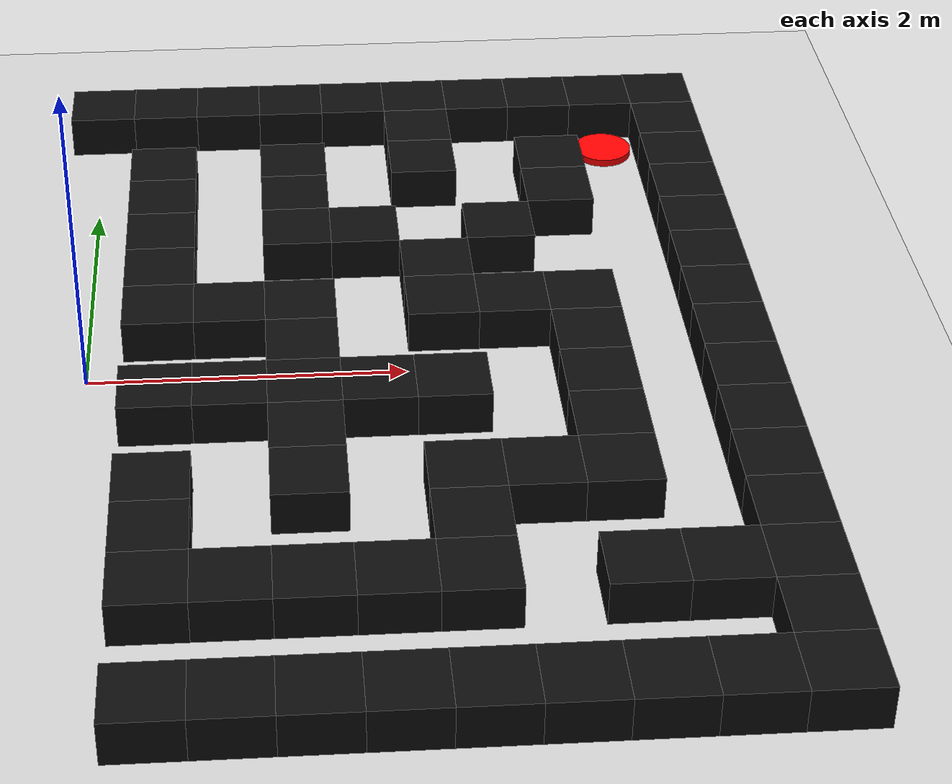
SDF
<sdf version="1.9">
 <world name="generated_block_maze">
  <model name="ground_plane">
   <static>true</static>
   <link name="link">
    <collision name="collision">
     <geometry><plane><normal>0 0 1</normal><size>30 30</size></plane></geometry>
    </collision>
    <visual name="visual">
     <geometry><plane><normal>0 0 1</normal><size>30 30</size></plane></geometry>
     <material><ambient>0.82 0.82 0.82 1</ambient><diffuse>0.82 0.82 0.82 1</diffuse></material>
    </visual>
   </link>
  </model>
  <model name="wall_10">
   <static>true</static>
   <pose>0.450 -3.150 0.140 0 0 0</pose>
   <link name="link">
    <collision name="collision"><geometry><box><size>0.450 0.450 0.280</size></box></geometry></collision>
    <visual name="visual">
     <geometry><box><size>0.450 0.450 0.280</size></box></geometry>
     <material><ambient>0.05 0.05 0.05 1</ambient><diffuse>0.05 0.05 0.05 1</diffuse></material>
    </visual>
   </link>
  </model>
  <model name="wall_11">
   <static>true</static>
   <pose>0.900 -3.150 0.140 0 0 0</pose>
   <link name="link">
    <collision name="collision"><geometry><box><size>0.450 0.450 0.280</size></box></geometry></collision>
    <visual name="visual">
     <geometry><box><size>0.450 0.450 0.280</size></box></geometry>
     <material><ambient>0.05 0.05 0.05 1</ambient><diffuse>0.05 0.05 0.05 1</diffuse></material>
    </visual>
   </link>
  </model>
  <model name="wall_12">
   <static>true</static>
   <pose>1.350 -3.150 0.140 0 0 0</pose>
   <link name="link">
    <collision name="collision"><geometry><box><size>0.450 0.450 0.280</size></box></geometry></collision>
    <visual name="visual">
     <geometry><box><size>0.450 0.450 0.280</size></box></geometry>
     <material><ambient>0.05 0.05 0.05 1</ambient><diffuse>0.05 0.05 0.05 1</diffuse></material>
    </visual>
   </link>
  </model>
  <model name="wall_13">
   <static>true</static>
   <pose>1.800 -3.150 0.140 0 0 0</pose>
   <link name="link">
    <collision name="collision"><geometry><box><size>0.450 0.450 0.280</size></box></geometry></collision>
    <visual name="visual">
     <geometry><box><size>0.450 0.450 0.280</size></box></geometry>
     <material><ambient>0.05 0.05 0.05 1</ambient><diffuse>0.05 0.05 0.05 1</diffuse></material>
    </visual>
   </link>
  </model>
  <model name="wall_14">
   <static>true</static>
   <pose>2.250 -3.150 0.140 0 0 0</pose>
   <link name="link">
    <collision name="collision"><geometry><box><size>0.450 0.450 0.280</size></box></geometry></collision>
    <visual name="visual">
     <geometry><box><size>0.450 0.450 0.280</size></box></geometry>
     <material><ambient>0.05 0.05 0.05 1</ambient><diffuse>0.05 0.05 0.05 1</diffuse></material>
    </visual>
   </link>
  </model>
  <model name="wall_15">
   <static>true</static>
   <pose>2.700 -3.150 0.140 0 0 0</pose>
   <link name="link">
    <collision name="collision"><geometry><box><size>0.450 0.450 0.280</size></box></geometry></collision>
    <visual name="visual">
     <geometry><box><size>0.450 0.450 0.280</size></box></geometry>
     <material><ambient>0.05 0.05 0.05 1</ambient><diffuse>0.05 0.05 0.05 1</diffuse></material>
    </visual>
   </link>
  </model>
  <model name="wall_16">
   <static>true</static>
   <pose>3.150 -3.150 0.140 0 0 0</pose>
   <link name="link">
    <collision name="collision"><geometry><box><size>0.450 0.450 0.280</size></box></geometry></collision>
    <visual name="visual">
     <geometry><box><size>0.450 0.450 0.280</size></box></geometry>
     <material><ambient>0.05 0.05 0.05 1</ambient><diffuse>0.05 0.05 0.05 1</diffuse></material>
    </visual>
   </link>
  </model>
  <model name="wall_17">
   <static>true</static>
   <pose>3.600 -3.150 0.140 0 0 0</pose>
   <link name="link">
    <collision name="collision"><geometry><box><size>0.450 0.450 0.280</size></box></geometry></collision>
    <visual name="visual">
     <geometry><box><size>0.450 0.450 0.280</size></box></geometry>
     <material><ambient>0.05 0.05 0.05 1</ambient><diffuse>0.05 0.05 0.05 1</diffuse></material>
    </visual>
   </link>
  </model>
  <model name="wall_18">
   <static>true</static>
   <pose>4.050 -3.150 0.140 0 0 0</pose>
   <link name="link">
    <collision name="collision"><geometry><box><size>0.450 0.450 0.280</size></box></geometry></collision>
    <visual name="visual">
     <geometry><box><size>0.450 0.450 0.280</size></box></geometry>
     <material><ambient>0.05 0.05 0.05 1</ambient><diffuse>0.05 0.05 0.05 1</diffuse></material>
    </visual>
   </link>
  </model>
  <model name="wall_21">
   <static>true</static>
   <pose>4.050 -2.700 0.140 0 0 0</pose>
   <link name="link">
    <collision name="collision"><geometry><box><size>0.450 0.450 0.280</size></box></geometry></collision>
    <visual name="visual">
     <geometry><box><size>0.450 0.450 0.280</size></box></geometry>
     <material><ambient>0.05 0.05 0.05 1</ambient><diffuse>0.05 0.05 0.05 1</diffuse></material>
    </visual>
   </link>
  </model>
  <model name="wall_30">
   <static>true</static>
   <pose>0.450 -2.250 0.140 0 0 0</pose>
   <link name="link">
    <collision name="collision"><geometry><box><size>0.450 0.450 0.280</size></box></geometry></collision>
    <visual name="visual">
     <geometry><box><size>0.450 0.450 0.280</size></box></geometry>
     <material><ambient>0.05 0.05 0.05 1</ambient><diffuse>0.05 0.05 0.05 1</diffuse></material>
    </visual>
   </link>
  </model>
  <model name="wall_31">
   <static>true</static>
   <pose>0.900 -2.250 0.140 0 0 0</pose>
   <link name="link">
    <collision name="collision"><geometry><box><size>0.450 0.450 0.280</size></box></geometry></collision>
    <visual name="visual">
     <geometry><box><size>0.450 0.450 0.280</size></box></geometry>
     <material><ambient>0.05 0.05 0.05 1</ambient><diffuse>0.05 0.05 0.05 1</diffuse></material>
    </visual>
   </link>
  </model>
  <model name="wall_32">
   <static>true</static>
   <pose>1.350 -2.250 0.140 0 0 0</pose>
   <link name="link">
    <collision name="collision"><geometry><box><size>0.450 0.450 0.280</size></box></geometry></collision>
    <visual name="visual">
     <geometry><box><size>0.450 0.450 0.280</size></box></geometry>
     <material><ambient>0.05 0.05 0.05 1</ambient><diffuse>0.05 0.05 0.05 1</diffuse></material>
    </visual>
   </link>
  </model>
  <model name="wall_33">
   <static>true</static>
   <pose>1.800 -2.250 0.140 0 0 0</pose>
   <link name="link">
    <collision name="collision"><geometry><box><size>0.450 0.450 0.280</size></box></geometry></collision>
    <visual name="visual">
     <geometry><box><size>0.450 0.450 0.280</size></box></geometry>
     <material><ambient>0.05 0.05 0.05 1</ambient><diffuse>0.05 0.05 0.05 1</diffuse></material>
    </visual>
   </link>
  </model>
  <model name="wall_34">
   <static>true</static>
   <pose>2.250 -2.250 0.140 0 0 0</pose>
   <link name="link">
    <collision name="collision"><geometry><box><size>0.450 0.450 0.280</size></box></geometry></collision>
    <visual name="visual">
     <geometry><box><size>0.450 0.450 0.280</size></box></geometry>
     <material><ambient>0.05 0.05 0.05 1</ambient><diffuse>0.05 0.05 0.05 1</diffuse></material>
    </visual>
   </link>
  </model>
  <model name="wall_35">
   <static>true</static>
   <pose>3.150 -2.250 0.140 0 0 0</pose>
   <link name="link">
    <collision name="collision"><geometry><box><size>0.450 0.450 0.280</size></box></geometry></collision>
    <visual name="visual">
     <geometry><box><size>0.450 0.450 0.280</size></box></geometry>
     <material><ambient>0.05 0.05 0.05 1</ambient><diffuse>0.05 0.05 0.05 1</diffuse></material>
    </visual>
   </link>
  </model>
  <model name="wall_36">
   <static>true</static>
   <pose>3.600 -2.250 0.140 0 0 0</pose>
   <link name="link">
    <collision name="collision"><geometry><box><size>0.450 0.450 0.280</size></box></geometry></collision>
    <visual name="visual">
     <geometry><box><size>0.450 0.450 0.280</size></box></geometry>
     <material><ambient>0.05 0.05 0.05 1</ambient><diffuse>0.05 0.05 0.05 1</diffuse></material>
    </visual>
   </link>
  </model>
  <model name="wall_37">
   <static>true</static>
   <pose>4.050 -2.250 0.140 0 0 0</pose>
   <link name="link">
    <collision name="collision"><geometry><box><size>0.450 0.450 0.280</size></box></geometry></collision>
    <visual name="visual">
     <geometry><box><size>0.450 0.450 0.280</size></box></geometry>
     <material><ambient>0.05 0.05 0.05 1</ambient><diffuse>0.05 0.05 0.05 1</diffuse></material>
    </visual>
   </link>
  </model>
  <model name="wall_40">
   <static>true</static>
   <pose>0.450 -1.800 0.140 0 0 0</pose>
   <link name="link">
    <collision name="collision"><geometry><box><size>0.450 0.450 0.280</size></box></geometry></collision>
    <visual name="visual">
     <geometry><box><size>0.450 0.450 0.280</size></box></geometry>
     <material><ambient>0.05 0.05 0.05 1</ambient><diffuse>0.05 0.05 0.05 1</diffuse></material>
    </visual>
   </link>
  </model>
  <model name="wall_41">
   <static>true</static>
   <pose>2.250 -1.800 0.140 0 0 0</pose>
   <link name="link">
    <collision name="collision"><geometry><box><size>0.450 0.450 0.280</size></box></geometry></collision>
    <visual name="visual">
     <geometry><box><size>0.450 0.450 0.280</size></box></geometry>
     <material><ambient>0.05 0.05 0.05 1</ambient><diffuse>0.05 0.05 0.05 1</diffuse></material>
    </visual>
   </link>
  </model>
  <model name="wall_42">
   <static>true</static>
   <pose>4.050 -1.800 0.140 0 0 0</pose>
   <link name="link">
    <collision name="collision"><geometry><box><size>0.450 0.450 0.280</size></box></geometry></collision>
    <visual name="visual">
     <geometry><box><size>0.450 0.450 0.280</size></box></geometry>
     <material><ambient>0.05 0.05 0.05 1</ambient><diffuse>0.05 0.05 0.05 1</diffuse></material>
    </visual>
   </link>
  </model>
  <model name="wall_51">
   <static>true</static>
   <pose>0.450 -1.350 0.140 0 0 0</pose>
   <link name="link">
    <collision name="collision"><geometry><box><size>0.450 0.450 0.280</size></box></geometry></collision>
    <visual name="visual">
     <geometry><box><size>0.450 0.450 0.280</size></box></geometry>
     <material><ambient>0.05 0.05 0.05 1</ambient><diffuse>0.05 0.05 0.05 1</diffuse></material>
    </visual>
   </link>
  </model>
  <model name="wall_52">
   <static>true</static>
   <pose>1.350 -1.350 0.140 0 0 0</pose>
   <link name="link">
    <collision name="collision"><geometry><box><size>0.450 0.450 0.280</size></box></geometry></collision>
    <visual name="visual">
     <geometry><box><size>0.450 0.450 0.280</size></box></geometry>
     <material><ambient>0.05 0.05 0.05 1</ambient><diffuse>0.05 0.05 0.05 1</diffuse></material>
    </visual>
   </link>
  </model>
  <model name="wall_53">
   <static>true</static>
   <pose>2.250 -1.350 0.140 0 0 0</pose>
   <link name="link">
    <collision name="collision"><geometry><box><size>0.450 0.450 0.280</size></box></geometry></collision>
    <visual name="visual">
     <geometry><box><size>0.450 0.450 0.280</size></box></geometry>
     <material><ambient>0.05 0.05 0.05 1</ambient><diffuse>0.05 0.05 0.05 1</diffuse></material>
    </visual>
   </link>
  </model>
  <model name="wall_54">
   <static>true</static>
   <pose>2.700 -1.350 0.140 0 0 0</pose>
   <link name="link">
    <collision name="collision"><geometry><box><size>0.450 0.450 0.280</size></box></geometry></collision>
    <visual name="visual">
     <geometry><box><size>0.450 0.450 0.280</size></box></geometry>
     <material><ambient>0.05 0.05 0.05 1</ambient><diffuse>0.05 0.05 0.05 1</diffuse></material>
    </visual>
   </link>
  </model>
  <model name="wall_55">
   <static>true</static>
   <pose>3.150 -1.350 0.140 0 0 0</pose>
   <link name="link">
    <collision name="collision"><geometry><box><size>0.450 0.450 0.280</size></box></geometry></collision>
    <visual name="visual">
     <geometry><box><size>0.450 0.450 0.280</size></box></geometry>
     <material><ambient>0.05 0.05 0.05 1</ambient><diffuse>0.05 0.05 0.05 1</diffuse></material>
    </visual>
   </link>
  </model>
  <model name="wall_56">
   <static>true</static>
   <pose>4.050 -1.350 0.140 0 0 0</pose>
   <link name="link">
    <collision name="collision"><geometry><box><size>0.450 0.450 0.280</size></box></geometry></collision>
    <visual name="visual">
     <geometry><box><size>0.450 0.450 0.280</size></box></geometry>
     <material><ambient>0.05 0.05 0.05 1</ambient><diffuse>0.05 0.05 0.05 1</diffuse></material>
    </visual>
   </link>
  </model>
  <model name="wall_58">
   <static>true</static>
   <pose>1.350 -0.900 0.140 0 0 0</pose>
   <link name="link">
    <collision name="collision"><geometry><box><size>0.450 0.450 0.280</size></box></geometry></collision>
    <visual name="visual">
     <geometry><box><size>0.450 0.450 0.280</size></box></geometry>
     <material><ambient>0.05 0.05 0.05 1</ambient><diffuse>0.05 0.05 0.05 1</diffuse></material>
    </visual>
   </link>
  </model>
  <model name="wall_59">
   <static>true</static>
   <pose>3.150 -0.900 0.140 0 0 0</pose>
   <link name="link">
    <collision name="collision"><geometry><box><size>0.450 0.450 0.280</size></box></geometry></collision>
    <visual name="visual">
     <geometry><box><size>0.450 0.450 0.280</size></box></geometry>
     <material><ambient>0.05 0.05 0.05 1</ambient><diffuse>0.05 0.05 0.05 1</diffuse></material>
    </visual>
   </link>
  </model>
  <model name="wall_60">
   <static>true</static>
   <pose>4.050 -0.900 0.140 0 0 0</pose>
   <link name="link">
    <collision name="collision"><geometry><box><size>0.450 0.450 0.280</size></box></geometry></collision>
    <visual name="visual">
     <geometry><box><size>0.450 0.450 0.280</size></box></geometry>
     <material><ambient>0.05 0.05 0.05 1</ambient><diffuse>0.05 0.05 0.05 1</diffuse></material>
    </visual>
   </link>
  </model>
  <model name="wall_70">
   <static>true</static>
   <pose>0.450 -0.450 0.140 0 0 0</pose>
   <link name="link">
    <collision name="collision"><geometry><box><size>0.450 0.450 0.280</size></box></geometry></collision>
    <visual name="visual">
     <geometry><box><size>0.450 0.450 0.280</size></box></geometry>
     <material><ambient>0.05 0.05 0.05 1</ambient><diffuse>0.05 0.05 0.05 1</diffuse></material>
    </visual>
   </link>
  </model>
  <model name="wall_71">
   <static>true</static>
   <pose>0.900 -0.450 0.140 0 0 0</pose>
   <link name="link">
    <collision name="collision"><geometry><box><size>0.450 0.450 0.280</size></box></geometry></collision>
    <visual name="visual">
     <geometry><box><size>0.450 0.450 0.280</size></box></geometry>
     <material><ambient>0.05 0.05 0.05 1</ambient><diffuse>0.05 0.05 0.05 1</diffuse></material>
    </visual>
   </link>
  </model>
  <model name="wall_72">
   <static>true</static>
   <pose>1.350 -0.450 0.140 0 0 0</pose>
   <link name="link">
    <collision name="collision"><geometry><box><size>0.450 0.450 0.280</size></box></geometry></collision>
    <visual name="visual">
     <geometry><box><size>0.450 0.450 0.280</size></box></geometry>
     <material><ambient>0.05 0.05 0.05 1</ambient><diffuse>0.05 0.05 0.05 1</diffuse></material>
    </visual>
   </link>
  </model>
  <model name="wall_73">
   <static>true</static>
   <pose>1.800 -0.450 0.140 0 0 0</pose>
   <link name="link">
    <collision name="collision"><geometry><box><size>0.450 0.450 0.280</size></box></geometry></collision>
    <visual name="visual">
     <geometry><box><size>0.450 0.450 0.280</size></box></geometry>
     <material><ambient>0.05 0.05 0.05 1</ambient><diffuse>0.05 0.05 0.05 1</diffuse></material>
    </visual>
   </link>
  </model>
  <model name="wall_74">
   <static>true</static>
   <pose>2.250 -0.450 0.140 0 0 0</pose>
   <link name="link">
    <collision name="collision"><geometry><box><size>0.450 0.450 0.280</size></box></geometry></collision>
    <visual name="visual">
     <geometry><box><size>0.450 0.450 0.280</size></box></geometry>
     <material><ambient>0.05 0.05 0.05 1</ambient><diffuse>0.05 0.05 0.05 1</diffuse></material>
    </visual>
   </link>
  </model>
  <model name="wall_75">
   <static>true</static>
   <pose>3.150 -0.450 0.140 0 0 0</pose>
   <link name="link">
    <collision name="collision"><geometry><box><size>0.450 0.450 0.280</size></box></geometry></collision>
    <visual name="visual">
     <geometry><box><size>0.450 0.450 0.280</size></box></geometry>
     <material><ambient>0.05 0.05 0.05 1</ambient><diffuse>0.05 0.05 0.05 1</diffuse></material>
    </visual>
   </link>
  </model>
  <model name="wall_76">
   <static>true</static>
   <pose>4.050 -0.450 0.140 0 0 0</pose>
   <link name="link">
    <collision name="collision"><geometry><box><size>0.450 0.450 0.280</size></box></geometry></collision>
    <visual name="visual">
     <geometry><box><size>0.450 0.450 0.280</size></box></geometry>
     <material><ambient>0.05 0.05 0.05 1</ambient><diffuse>0.05 0.05 0.05 1</diffuse></material>
    </visual>
   </link>
  </model>
  <model name="wall_78">
   <static>true</static>
   <pose>1.350 0.000 0.140 0 0 0</pose>
   <link name="link">
    <collision name="collision"><geometry><box><size>0.450 0.450 0.280</size></box></geometry></collision>
    <visual name="visual">
     <geometry><box><size>0.450 0.450 0.280</size></box></geometry>
     <material><ambient>0.05 0.05 0.05 1</ambient><diffuse>0.05 0.05 0.05 1</diffuse></material>
    </visual>
   </link>
  </model>
  <model name="wall_79">
   <static>true</static>
   <pose>3.150 0.000 0.140 0 0 0</pose>
   <link name="link">
    <collision name="collision"><geometry><box><size>0.450 0.450 0.280</size></box></geometry></collision>
    <visual name="visual">
     <geometry><box><size>0.450 0.450 0.280</size></box></geometry>
     <material><ambient>0.05 0.05 0.05 1</ambient><diffuse>0.05 0.05 0.05 1</diffuse></material>
    </visual>
   </link>
  </model>
  <model name="wall_80">
   <static>true</static>
   <pose>4.050 0.000 0.140 0 0 0</pose>
   <link name="link">
    <collision name="collision"><geometry><box><size>0.450 0.450 0.280</size></box></geometry></collision>
    <visual name="visual">
     <geometry><box><size>0.450 0.450 0.280</size></box></geometry>
     <material><ambient>0.05 0.05 0.05 1</ambient><diffuse>0.05 0.05 0.05 1</diffuse></material>
    </visual>
   </link>
  </model>
  <model name="wall_86">
   <static>true</static>
   <pose>0.450 0.450 0.140 0 0 0</pose>
   <link name="link">
    <collision name="collision"><geometry><box><size>0.450 0.450 0.280</size></box></geometry></collision>
    <visual name="visual">
     <geometry><box><size>0.450 0.450 0.280</size></box></geometry>
     <material><ambient>0.05 0.05 0.05 1</ambient><diffuse>0.05 0.05 0.05 1</diffuse></material>
    </visual>
   </link>
  </model>
  <model name="wall_87">
   <static>true</static>
   <pose>0.900 0.450 0.140 0 0 0</pose>
   <link name="link">
    <collision name="collision"><geometry><box><size>0.450 0.450 0.280</size></box></geometry></collision>
    <visual name="visual">
     <geometry><box><size>0.450 0.450 0.280</size></box></geometry>
     <material><ambient>0.05 0.05 0.05 1</ambient><diffuse>0.05 0.05 0.05 1</diffuse></material>
    </visual>
   </link>
  </model>
  <model name="wall_88">
   <static>true</static>
   <pose>1.350 0.450 0.140 0 0 0</pose>
   <link name="link">
    <collision name="collision"><geometry><box><size>0.450 0.450 0.280</size></box></geometry></collision>
    <visual name="visual">
     <geometry><box><size>0.450 0.450 0.280</size></box></geometry>
     <material><ambient>0.05 0.05 0.05 1</ambient><diffuse>0.05 0.05 0.05 1</diffuse></material>
    </visual>
   </link>
  </model>
  <model name="wall_89">
   <static>true</static>
   <pose>2.250 0.450 0.140 0 0 0</pose>
   <link name="link">
    <collision name="collision"><geometry><box><size>0.450 0.450 0.280</size></box></geometry></collision>
    <visual name="visual">
     <geometry><box><size>0.450 0.450 0.280</size></box></geometry>
     <material><ambient>0.05 0.05 0.05 1</ambient><diffuse>0.05 0.05 0.05 1</diffuse></material>
    </visual>
   </link>
  </model>
  <model name="wall_90">
   <static>true</static>
   <pose>2.700 0.450 0.140 0 0 0</pose>
   <link name="link">
    <collision name="collision"><geometry><box><size>0.450 0.450 0.280</size></box></geometry></collision>
    <visual name="visual">
     <geometry><box><size>0.450 0.450 0.280</size></box></geometry>
     <material><ambient>0.05 0.05 0.05 1</ambient><diffuse>0.05 0.05 0.05 1</diffuse></material>
    </visual>
   </link>
  </model>
  <model name="wall_91">
   <static>true</static>
   <pose>3.150 0.450 0.140 0 0 0</pose>
   <link name="link">
    <collision name="collision"><geometry><box><size>0.450 0.450 0.280</size></box></geometry></collision>
    <visual name="visual">
     <geometry><box><size>0.450 0.450 0.280</size></box></geometry>
     <material><ambient>0.05 0.05 0.05 1</ambient><diffuse>0.05 0.05 0.05 1</diffuse></material>
    </visual>
   </link>
  </model>
  <model name="wall_92">
   <static>true</static>
   <pose>4.050 0.450 0.140 0 0 0</pose>
   <link name="link">
    <collision name="collision"><geometry><box><size>0.450 0.450 0.280</size></box></geometry></collision>
    <visual name="visual">
     <geometry><box><size>0.450 0.450 0.280</size></box></geometry>
     <material><ambient>0.05 0.05 0.05 1</ambient><diffuse>0.05 0.05 0.05 1</diffuse></material>
    </visual>
   </link>
  </model>
  <model name="wall_96">
   <static>true</static>
   <pose>0.450 0.900 0.140 0 0 0</pose>
   <link name="link">
    <collision name="collision"><geometry><box><size>0.450 0.450 0.280</size></box></geometry></collision>
    <visual name="visual">
     <geometry><box><size>0.450 0.450 0.280</size></box></geometry>
     <material><ambient>0.05 0.05 0.05 1</ambient><diffuse>0.05 0.05 0.05 1</diffuse></material>
    </visual>
   </link>
  </model>
  <model name="wall_97">
   <static>true</static>
   <pose>2.250 0.900 0.140 0 0 0</pose>
   <link name="link">
    <collision name="collision"><geometry><box><size>0.450 0.450 0.280</size></box></geometry></collision>
    <visual name="visual">
     <geometry><box><size>0.450 0.450 0.280</size></box></geometry>
     <material><ambient>0.05 0.05 0.05 1</ambient><diffuse>0.05 0.05 0.05 1</diffuse></material>
    </visual>
   </link>
  </model>
  <model name="wall_98">
   <static>true</static>
   <pose>4.050 0.900 0.140 0 0 0</pose>
   <link name="link">
    <collision name="collision"><geometry><box><size>0.450 0.450 0.280</size></box></geometry></collision>
    <visual name="visual">
     <geometry><box><size>0.450 0.450 0.280</size></box></geometry>
     <material><ambient>0.05 0.05 0.05 1</ambient><diffuse>0.05 0.05 0.05 1</diffuse></material>
    </visual>
   </link>
  </model>
  <model name="wall_104">
   <static>true</static>
   <pose>0.450 1.350 0.140 0 0 0</pose>
   <link name="link">
    <collision name="collision"><geometry><box><size>0.450 0.450 0.280</size></box></geometry></collision>
    <visual name="visual">
     <geometry><box><size>0.450 0.450 0.280</size></box></geometry>
     <material><ambient>0.05 0.05 0.05 1</ambient><diffuse>0.05 0.05 0.05 1</diffuse></material>
    </visual>
   </link>
  </model>
  <model name="wall_105">
   <static>true</static>
   <pose>1.350 1.350 0.140 0 0 0</pose>
   <link name="link">
    <collision name="collision"><geometry><box><size>0.450 0.450 0.280</size></box></geometry></collision>
    <visual name="visual">
     <geometry><box><size>0.450 0.450 0.280</size></box></geometry>
     <material><ambient>0.05 0.05 0.05 1</ambient><diffuse>0.05 0.05 0.05 1</diffuse></material>
    </visual>
   </link>
  </model>
  <model name="wall_106">
   <static>true</static>
   <pose>1.800 1.350 0.140 0 0 0</pose>
   <link name="link">
    <collision name="collision"><geometry><box><size>0.450 0.450 0.280</size></box></geometry></collision>
    <visual name="visual">
     <geometry><box><size>0.450 0.450 0.280</size></box></geometry>
     <material><ambient>0.05 0.05 0.05 1</ambient><diffuse>0.05 0.05 0.05 1</diffuse></material>
    </visual>
   </link>
  </model>
  <model name="wall_107">
   <static>true</static>
   <pose>2.700 1.350 0.140 0 0 0</pose>
   <link name="link">
    <collision name="collision"><geometry><box><size>0.450 0.450 0.280</size></box></geometry></collision>
    <visual name="visual">
     <geometry><box><size>0.450 0.450 0.280</size></box></geometry>
     <material><ambient>0.05 0.05 0.05 1</ambient><diffuse>0.05 0.05 0.05 1</diffuse></material>
    </visual>
   </link>
  </model>
  <model name="wall_108">
   <static>true</static>
   <pose>4.050 1.350 0.140 0 0 0</pose>
   <link name="link">
    <collision name="collision"><geometry><box><size>0.450 0.450 0.280</size></box></geometry></collision>
    <visual name="visual">
     <geometry><box><size>0.450 0.450 0.280</size></box></geometry>
     <material><ambient>0.05 0.05 0.05 1</ambient><diffuse>0.05 0.05 0.05 1</diffuse></material>
    </visual>
   </link>
  </model>
  <model name="wall_112">
   <static>true</static>
   <pose>0.450 1.800 0.140 0 0 0</pose>
   <link name="link">
    <collision name="collision"><geometry><box><size>0.450 0.450 0.280</size></box></geometry></collision>
    <visual name="visual">
     <geometry><box><size>0.450 0.450 0.280</size></box></geometry>
     <material><ambient>0.05 0.05 0.05 1</ambient><diffuse>0.05 0.05 0.05 1</diffuse></material>
    </visual>
   </link>
  </model>
  <model name="wall_113">
   <static>true</static>
   <pose>1.350 1.800 0.140 0 0 0</pose>
   <link name="link">
    <collision name="collision"><geometry><box><size>0.450 0.450 0.280</size></box></geometry></collision>
    <visual name="visual">
     <geometry><box><size>0.450 0.450 0.280</size></box></geometry>
     <material><ambient>0.05 0.05 0.05 1</ambient><diffuse>0.05 0.05 0.05 1</diffuse></material>
    </visual>
   </link>
  </model>
  <model name="wall_114">
   <static>true</static>
   <pose>3.150 1.800 0.140 0 0 0</pose>
   <link name="link">
    <collision name="collision"><geometry><box><size>0.450 0.450 0.280</size></box></geometry></collision>
    <visual name="visual">
     <geometry><box><size>0.450 0.450 0.280</size></box></geometry>
     <material><ambient>0.05 0.05 0.05 1</ambient><diffuse>0.05 0.05 0.05 1</diffuse></material>
    </visual>
   </link>
  </model>
  <model name="wall_115">
   <static>true</static>
   <pose>4.050 1.800 0.140 0 0 0</pose>
   <link name="link">
    <collision name="collision"><geometry><box><size>0.450 0.450 0.280</size></box></geometry></collision>
    <visual name="visual">
     <geometry><box><size>0.450 0.450 0.280</size></box></geometry>
     <material><ambient>0.05 0.05 0.05 1</ambient><diffuse>0.05 0.05 0.05 1</diffuse></material>
    </visual>
   </link>
  </model>
  <model name="wall_124">
   <static>true</static>
   <pose>0.450 2.250 0.140 0 0 0</pose>
   <link name="link">
    <collision name="collision"><geometry><box><size>0.450 0.450 0.280</size></box></geometry></collision>
    <visual name="visual">
     <geometry><box><size>0.450 0.450 0.280</size></box></geometry>
     <material><ambient>0.05 0.05 0.05 1</ambient><diffuse>0.05 0.05 0.05 1</diffuse></material>
    </visual>
   </link>
  </model>
  <model name="wall_125">
   <static>true</static>
   <pose>1.350 2.250 0.140 0 0 0</pose>
   <link name="link">
    <collision name="collision"><geometry><box><size>0.450 0.450 0.280</size></box></geometry></collision>
    <visual name="visual">
     <geometry><box><size>0.450 0.450 0.280</size></box></geometry>
     <material><ambient>0.05 0.05 0.05 1</ambient><diffuse>0.05 0.05 0.05 1</diffuse></material>
    </visual>
   </link>
  </model>
  <model name="wall_126">
   <static>true</static>
   <pose>2.250 2.250 0.140 0 0 0</pose>
   <link name="link">
    <collision name="collision"><geometry><box><size>0.450 0.450 0.280</size></box></geometry></collision>
    <visual name="visual">
     <geometry><box><size>0.450 0.450 0.280</size></box></geometry>
     <material><ambient>0.05 0.05 0.05 1</ambient><diffuse>0.05 0.05 0.05 1</diffuse></material>
    </visual>
   </link>
  </model>
  <model name="wall_127">
   <static>true</static>
   <pose>3.150 2.250 0.140 0 0 0</pose>
   <link name="link">
    <collision name="collision"><geometry><box><size>0.450 0.450 0.280</size></box></geometry></collision>
    <visual name="visual">
     <geometry><box><size>0.450 0.450 0.280</size></box></geometry>
     <material><ambient>0.05 0.05 0.05 1</ambient><diffuse>0.05 0.05 0.05 1</diffuse></material>
    </visual>
   </link>
  </model>
  <model name="wall_128">
   <static>true</static>
   <pose>4.050 2.250 0.140 0 0 0</pose>
   <link name="link">
    <collision name="collision"><geometry><box><size>0.450 0.450 0.280</size></box></geometry></collision>
    <visual name="visual">
     <geometry><box><size>0.450 0.450 0.280</size></box></geometry>
     <material><ambient>0.05 0.05 0.05 1</ambient><diffuse>0.05 0.05 0.05 1</diffuse></material>
    </visual>
   </link>
  </model>
  <model name="wall_131">
   <static>true</static>
   <pose>2.250 2.700 0.140 0 0 0</pose>
   <link name="link">
    <collision name="collision"><geometry><box><size>0.450 0.450 0.280</size></box></geometry></collision>
    <visual name="visual">
     <geometry><box><size>0.450 0.450 0.280</size></box></geometry>
     <material><ambient>0.05 0.05 0.05 1</ambient><diffuse>0.05 0.05 0.05 1</diffuse></material>
    </visual>
   </link>
  </model>
  <model name="wall_132">
   <static>true</static>
   <pose>4.050 2.700 0.140 0 0 0</pose>
   <link name="link">
    <collision name="collision"><geometry><box><size>0.450 0.450 0.280</size></box></geometry></collision>
    <visual name="visual">
     <geometry><box><size>0.450 0.450 0.280</size></box></geometry>
     <material><ambient>0.05 0.05 0.05 1</ambient><diffuse>0.05 0.05 0.05 1</diffuse></material>
    </visual>
   </link>
  </model>
  <model name="wall_142">
   <static>true</static>
   <pose>0.000 3.150 0.140 0 0 0</pose>
   <link name="link">
    <collision name="collision"><geometry><box><size>0.450 0.450 0.280</size></box></geometry></collision>
    <visual name="visual">
     <geometry><box><size>0.450 0.450 0.280</size></box></geometry>
     <material><ambient>0.05 0.05 0.05 1</ambient><diffuse>0.05 0.05 0.05 1</diffuse></material>
    </visual>
   </link>
  </model>
  <model name="wall_143">
   <static>true</static>
   <pose>0.450 3.150 0.140 0 0 0</pose>
   <link name="link">
    <collision name="collision"><geometry><box><size>0.450 0.450 0.280</size></box></geometry></collision>
    <visual name="visual">
     <geometry><box><size>0.450 0.450 0.280</size></box></geometry>
     <material><ambient>0.05 0.05 0.05 1</ambient><diffuse>0.05 0.05 0.05 1</diffuse></material>
    </visual>
   </link>
  </model>
  <model name="wall_144">
   <static>true</static>
   <pose>0.900 3.150 0.140 0 0 0</pose>
   <link name="link">
    <collision name="collision"><geometry><box><size>0.450 0.450 0.280</size></box></geometry></collision>
    <visual name="visual">
     <geometry><box><size>0.450 0.450 0.280</size></box></geometry>
     <material><ambient>0.05 0.05 0.05 1</ambient><diffuse>0.05 0.05 0.05 1</diffuse></material>
    </visual>
   </link>
  </model>
  <model name="wall_145">
   <static>true</static>
   <pose>1.350 3.150 0.140 0 0 0</pose>
   <link name="link">
    <collision name="collision"><geometry><box><size>0.450 0.450 0.280</size></box></geometry></collision>
    <visual name="visual">
     <geometry><box><size>0.450 0.450 0.280</size></box></geometry>
     <material><ambient>0.05 0.05 0.05 1</ambient><diffuse>0.05 0.05 0.05 1</diffuse></material>
    </visual>
   </link>
  </model>
  <model name="wall_146">
   <static>true</static>
   <pose>1.800 3.150 0.140 0 0 0</pose>
   <link name="link">
    <collision name="collision"><geometry><box><size>0.450 0.450 0.280</size></box></geometry></collision>
    <visual name="visual">
     <geometry><box><size>0.450 0.450 0.280</size></box></geometry>
     <material><ambient>0.05 0.05 0.05 1</ambient><diffuse>0.05 0.05 0.05 1</diffuse></material>
    </visual>
   </link>
  </model>
  <model name="wall_147">
   <static>true</static>
   <pose>2.250 3.150 0.140 0 0 0</pose>
   <link name="link">
    <collision name="collision"><geometry><box><size>0.450 0.450 0.280</size></box></geometry></collision>
    <visual name="visual">
     <geometry><box><size>0.450 0.450 0.280</size></box></geometry>
     <material><ambient>0.05 0.05 0.05 1</ambient><diffuse>0.05 0.05 0.05 1</diffuse></material>
    </visual>
   </link>
  </model>
  <model name="wall_148">
   <static>true</static>
   <pose>2.700 3.150 0.140 0 0 0</pose>
   <link name="link">
    <collision name="collision"><geometry><box><size>0.450 0.450 0.280</size></box></geometry></collision>
    <visual name="visual">
     <geometry><box><size>0.450 0.450 0.280</size></box></geometry>
     <material><ambient>0.05 0.05 0.05 1</ambient><diffuse>0.05 0.05 0.05 1</diffuse></material>
    </visual>
   </link>
  </model>
  <model name="wall_149">
   <static>true</static>
   <pose>3.150 3.150 0.140 0 0 0</pose>
   <link name="link">
    <collision name="collision"><geometry><box><size>0.450 0.450 0.280</size></box></geometry></collision>
    <visual name="visual">
     <geometry><box><size>0.450 0.450 0.280</size></box></geometry>
     <material><ambient>0.05 0.05 0.05 1</ambient><diffuse>0.05 0.05 0.05 1</diffuse></material>
    </visual>
   </link>
  </model>
  <model name="wall_150">
   <static>true</static>
   <pose>3.600 3.150 0.140 0 0 0</pose>
   <link name="link">
    <collision name="collision"><geometry><box><size>0.450 0.450 0.280</size></box></geometry></collision>
    <visual name="visual">
     <geometry><box><size>0.450 0.450 0.280</size></box></geometry>
     <material><ambient>0.05 0.05 0.05 1</ambient><diffuse>0.05 0.05 0.05 1</diffuse></material>
    </visual>
   </link>
  </model>
  <model name="wall_151">
   <static>true</static>
   <pose>4.050 3.150 0.140 0 0 0</pose>
   <link name="link">
    <collision name="collision"><geometry><box><size>0.450 0.450 0.280</size></box></geometry></collision>
    <visual name="visual">
     <geometry><box><size>0.450 0.450 0.280</size></box></geometry>
     <material><ambient>0.05 0.05 0.05 1</ambient><diffuse>0.05 0.05 0.05 1</diffuse></material>
    </visual>
   </link>
  </model>
  <model name="goal_marker">
   <static>true</static>
   <pose>3.600 2.700 0.025 0 0 0</pose>
   <link name="link">
    <visual name="visual">
     <geometry><cylinder><radius>0.200</radius><length>0.050</length></cylinder></geometry>
     <material><ambient>1 0 0 1</ambient><diffuse>1 0 0 1</diffuse></material>
    </visual>
   </link>
  </model>
 </world>
</sdf>
